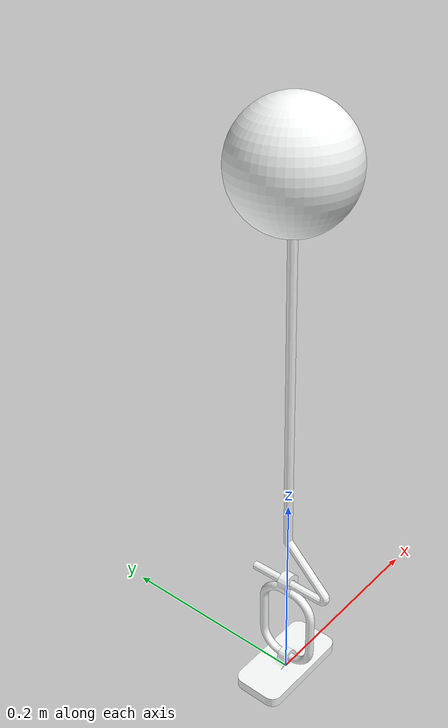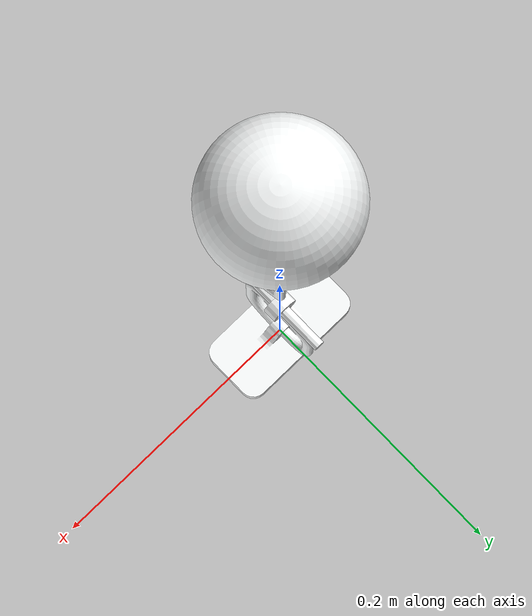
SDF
<sdf version='1.9'>
  <model name='ax2'>
    <link name='base_link'>
      <inertial>
        <pose>5.7171e-18 4.8949e-18 0.0053279 0 0 0</pose>
        <mass>0.050777999999999997</mass>
        <inertia>
          <ixx>1.0583e-05</ixx>
          <ixy>0</ixy>
          <ixz>0</ixz>
          <iyy>4.0367000000000002e-05</iyy>
          <iyz>0</iyz>
          <izz>4.9749000000000001e-05</izz>
        </inertia>
      </inertial>
      <collision name='base_link_collision'>
        <pose>0 0 0 0 0 0</pose>
        <geometry>
          <mesh>
            <scale>1 1 1</scale>
            <uri>model://ax2/meshes/base_link.STL</uri>
          </mesh>
        </geometry>
      </collision>
      <visual name='base_link_visual'>
        <pose>0 0 0 0 0 0</pose>
        <geometry>
          <mesh>
            <scale>1 1 1</scale>
            <uri>model://ax2/meshes/base_link.STL</uri>
          </mesh>
        </geometry>
        <material>
          <diffuse>0.9902 1 1 1</diffuse>
          <ambient>0.9902 1 1 1</ambient>
        </material>
      </visual>
    </link>
    <joint name='j_1' type='revolute'>
      <pose relative_to='base_link'>0 0 0.11167 1.5708 0 -1.5708</pose>
      <parent>base_link</parent>
      <child>p_link</child>
      <axis>
        <xyz>-1 0 0</xyz>
        <limit>
          <lower>0</lower>
          <upper>0</upper>
          <effort>0</effort>
          <velocity>0</velocity>
        </limit>
        <dynamics>
          <spring_reference>0</spring_reference>
          <spring_stiffness>0</spring_stiffness>
        </dynamics>
      </axis>
    </joint>
    <link name='p_link'>
      <pose relative_to='j_1'>0 0 0 0 0 0</pose>
      <inertial>
        <pose>2.1392e-16 -0.044975 4.6543e-16 0 0 0</pose>
        <mass>0.01431</mass>
        <inertia>
          <ixx>1.6680999999999998e-05</ixx>
          <ixy>0</ixy>
          <ixz>0</ixz>
          <iyy>6.2488999999999996e-06</iyy>
          <iyz>0</iyz>
          <izz>2.2687000000000001e-05</izz>
        </inertia>
      </inertial>
      <collision name='p_link_collision'>
        <pose>0 0 0 0 0 0</pose>
        <geometry>
          <mesh>
            <scale>1 1 1</scale>
            <uri>model://ax2/meshes/p_link.STL</uri>
          </mesh>
        </geometry>
      </collision>
      <visual name='p_link_visual'>
        <pose>0 0 0 0 0 0</pose>
        <geometry>
          <mesh>
            <scale>1 1 1</scale>
            <uri>model://ax2/meshes/p_link.STL</uri>
          </mesh>
        </geometry>
        <material>
          <diffuse>0.9902 1 1 1</diffuse>
          <ambient>0.9902 1 1 1</ambient>
        </material>
      </visual>
    </link>
    <joint name='j_2' type='revolute'>
      <pose relative_to='p_link'>0 0.0013581 0 0 0 0</pose>
      <parent>p_link</parent>
      <child>p2_link</child>
      <axis>
        <xyz>-1 0 0</xyz>
        <limit>
          <lower>0</lower>
          <upper>0</upper>
          <effort>0</effort>
          <velocity>0</velocity>
        </limit>
        <dynamics>
          <spring_reference>0</spring_reference>
          <spring_stiffness>0</spring_stiffness>
        </dynamics>
      </axis>
    </joint>
    <link name='p2_link'>
      <pose relative_to='j_2'>0 0 0 0 0 0</pose>
      <inertial>
        <pose>0.00015748 0.37834 -2.0724e-09 0 0 0</pose>
        <mass>0.54552999999999996</mass>
        <inertia>
          <ixx>0.00081242</ixx>
          <ixy>0</ixy>
          <ixz>0</ixz>
          <iyy>0.00052798999999999999</iyy>
          <iyz>0</iyz>
          <izz>0.00081663999999999999</izz>
        </inertia>
      </inertial>
      <collision name='p2_link_collision'>
        <pose>0 0 0 0 0 0</pose>
        <geometry>
          <mesh>
            <scale>1 1 1</scale>
            <uri>model://ax2/meshes/p2_link.STL</uri>
          </mesh>
        </geometry>
      </collision>
      <visual name='p2_link_visual'>
        <pose>0 0 0 0 0 0</pose>
        <geometry>
          <mesh>
            <scale>1 1 1</scale>
            <uri>model://ax2/meshes/p2_link.STL</uri>
          </mesh>
        </geometry>
        <material>
          <diffuse>0.9902 1 1 1</diffuse>
          <ambient>0.9902 1 1 1</ambient>
        </material>
      </visual>
    </link>
  </model>
</sdf>
